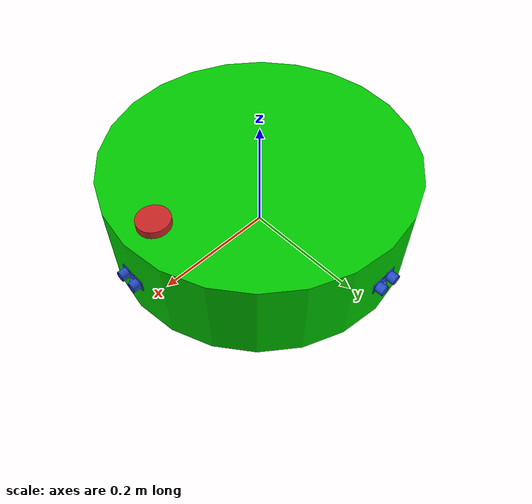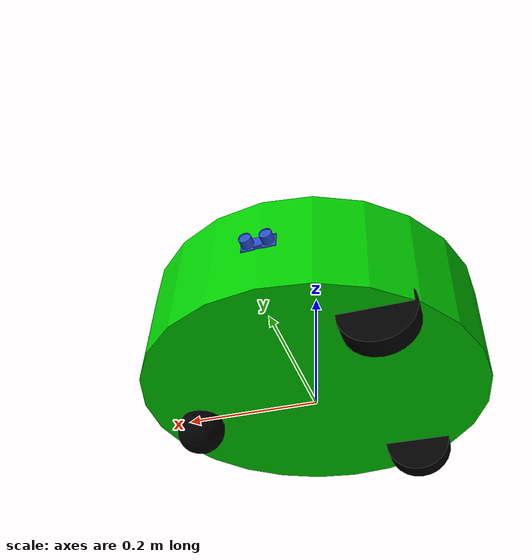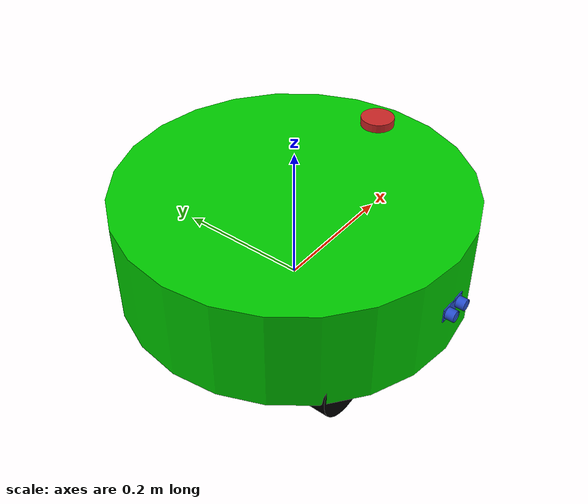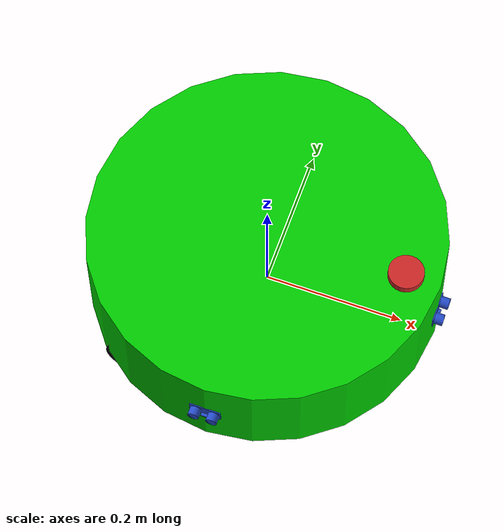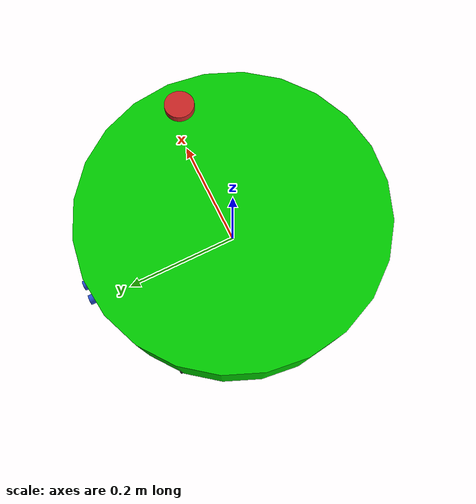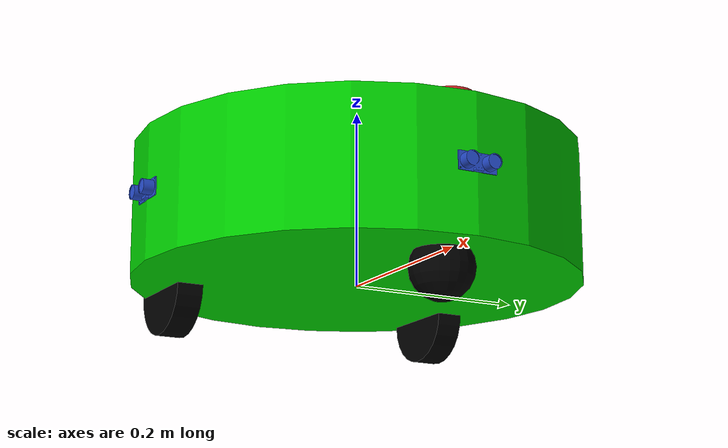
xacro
<?xml version="1.0"?>
<robot name="my_robot" xmlns:xacro="http://www.ros.org/wiki/xacro">
    <xacro:arg name="base_color_arg" default="Green"/>

    <xacro:include filename="$(find in424_desc)/xacro/materials.xacro"/>
    <xacro:include filename="$(find in424_desc)/xacro/robot.gazebo"/>
    <xacro:include filename="$(find in424_desc)/xacro/macro.xacro"/>

    <xacro:property name="base_radius" value="0.25"/>
    <xacro:property name="base_length" value="0.15"/>
    <xacro:property name="wheel_radius" value="0.05"/>
    <xacro:property name="wheel_length" value="0.03"/>
    <xacro:property name="front_wheel_radius" value="${wheel_radius/2+0.01}"/>

    <!-- *****************BASE LINK************************* -->
    <link name="base_footprint"/>

    <link name="base_link">
        <visual>
            <origin xyz="0 0 ${base_length/2}"/>
            <geometry>
                <cylinder radius="${base_radius}" length="${base_length}"/>
            </geometry>
            <material name="green"/>
        </visual>
        <collision>
            <origin xyz="0 0 ${base_length/2}"/>
            <geometry>
                <cylinder radius="${base_radius}" length="${base_length}"/>
            </geometry>
        </collision>
        <xacro:cylinder_inertial mass="0.5" radius="${base_radius}" length="${base_length}" oz="${base_length/2}" roll="0" pitch="0" yaw="0"/>
    </link>
    <joint name="base_footprint_to_base_link" type="fixed">
        <parent link="base_footprint"/>
        <child link="base_link"/>
    </joint>

    <link name="base_front">
        <visual>
            <geometry>
                <cylinder radius="0.025" length="0.025"/>
            </geometry>
        </visual>
    </link>
    <joint name="base_to_bf" type="fixed">
        <parent link="base_link"/>
        <child link="base_front"/>
        <origin xyz="${base_radius-2*0.025} 0 ${base_length}"/>
    </joint>

    <!-- *****************REAR WHEELS************************* -->
    <xacro:wheel prefix="left" reflect="1" />
    <xacro:wheel prefix="right" reflect="-1" />

    <!-- *****************FRONT WHEEL************************* -->
    <link name="front_wheel">
        <visual>
        <geometry>
            <sphere radius="${front_wheel_radius}"/>
        </geometry>
        <material name="black"/>
        </visual>
        <collision>
            <geometry>
                <sphere radius="${front_wheel_radius}"/>
            </geometry>
        </collision>
        <xacro:sphere_inertial mass="0.1" radius="${front_wheel_radius}"/>
    </link>
    <joint name="base_link_to_front_wheel" type="fixed">
        <parent link="base_link"/>
        <child link="front_wheel"/>
        <origin xyz="${base_radius-2*front_wheel_radius} 0 ${-front_wheel_radius/2}"/>
    </joint>

    <!-- *****************ULTRASONIC SENSORS************************* -->
    <xacro:us_link_joint link_name="us_front" x="${base_radius - 0.001}" y="0" yaw="0"/>
    <xacro:us_link_joint link_name="us_left" x="0" y="${base_radius - 0.001}" yaw="${pi/2}"/>
    <xacro:us_link_joint link_name="us_right" x="0" y="-${base_radius - 0.001}" yaw="-${pi/2}"/>
</robot>

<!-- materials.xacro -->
<robot>
    <material name="black">
        <color rgba="0.0 0.0 0.0 1.0"/>
    </material>

    <material name="blue">
        <color rgba="0.203125 0.23828125 0.28515625 1.0"/>
    </material>

    <material name="green">
        <color rgba="0.0 0.8 0.0 1.0"/>
    </material>

    <material name="grey">
        <color rgba="0.2 0.2 0.2 1.0"/>
    </material>

    <material name="orange">
        <color rgba="1.0 0.423529411765 0.0392156862745 1.0"/>
    </material>

    <material name="brown">
        <color rgba="0.870588235294 0.811764705882 0.764705882353 1.0"/>
    </material>

    <material name="red">
        <color rgba="0.80078125 0.12890625 0.1328125 1.0"/>
    </material>

    <material name="white">
        <color rgba="1.0 1.0 1.0 1.0"/>
    </material>
</robot>

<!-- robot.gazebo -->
<robot name="my_robot" xmlns:xacro="http://www.ros.org/wiki/xacro">
    <xacro:include filename="$(find in424_desc)/xacro/macro.xacro"/>

	<!-- base_link -->
	<gazebo reference="base_link">
		<material>Gazebo/$(arg base_color_arg)</material>
		<mu1>1.0</mu1>
		<mu2>1.0</mu2>
	</gazebo>
	<gazebo reference="base_front">
		<material>Gazebo/Red</material>
	</gazebo>

	<!-- Left Wheel -->
	<gazebo reference="left_wheel">
		<material>Gazebo/Black</material>
		<mu1>0.0</mu1>
    	<mu2>0.0</mu2>
	</gazebo>

	<!-- Right Wheel -->
	<gazebo reference="right_wheel">
		<material>Gazebo/Black</material>
		<mu1>0.0</mu1>
    	<mu2>0.0</mu2>
	</gazebo>

	<!-- Front Wheel -->
	<gazebo reference="front_wheel">
		<material>Gazebo/Black</material>
		<mu1>0.0</mu1>
    	<mu2>0.0</mu2>
	</gazebo>

	<!-- DO NOT TOUCH THIS PART -->
	<gazebo>
        <plugin name='object_controller' filename='libgazebo_ros_planar_move.so'>
            <odometry_frame>odom</odometry_frame>
			<update_rate>20</update_rate>	<!-- Set control loop update rate -->
            <publish_rate>10.0</publish_rate>	<!-- Set odom publish rate -->
            <robot_base_frame>base_footprint</robot_base_frame>
			<publish_odom_tf>false</publish_odom_tf>
        </plugin>
    </gazebo>

	<xacro:us_gazebo link_name="us_front"/>
	<xacro:us_gazebo link_name="us_left"/>
	<xacro:us_gazebo link_name="us_right"/>
</robot>

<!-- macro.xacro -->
<robot name="macro" xmlns:xacro="http://www.ros.org/wiki/xacro">
    <xacro:macro name="cylinder_inertial" params="mass radius length oz roll pitch yaw">
        <inertial>
        <origin xyz="0 0 ${oz}" rpy="${roll} ${pitch} ${yaw}"/>
        <mass value="${mass}"/>
        <inertia ixx="${mass*(3*radius*radius+length*length)/12}"
            iyy="${mass*(3*radius*radius+length*length)/12}"
            izz="${mass*radius*radius/2}"
            ixy="0" iyz="0" ixz="0"/>
        </inertial>
    </xacro:macro>

    <xacro:macro name="sphere_inertial" params="mass radius">
        <inertial>
        <mass value="${mass}"/>
        <inertia ixx="${mass*(2*radius*radius)/5}"
            iyy="${mass*(2*radius*radius)/5}"
            izz="${mass*(2*radius*radius)/5}"
            ixy="0" iyz="0" ixz="0"/>
        </inertial>
    </xacro:macro>

    <xacro:macro name="wheel" params="prefix reflect">
        <link name="${prefix}_wheel">
            <visual>
                <origin rpy="${pi/2} 0 0"/>
                <geometry>
                <cylinder radius="${wheel_radius}" length="${wheel_length}"/>
                </geometry>
                <material name="black"/>
            </visual>
            <collision>
                <origin rpy="${pi/2} 0 0"/>
                <geometry>
                <cylinder radius="${wheel_radius}" length="${wheel_length}"/>
                </geometry>
            </collision>
            <xacro:cylinder_inertial mass="0.05" radius="${wheel_radius}" length="${wheel_length}" oz="0" roll="${pi/2}" pitch="0" yaw="0"/>
        </link>
        <joint name="base_to_${prefix}_wheel" type="fixed">
            <parent link="base_link"/>
            <child link="${prefix}_wheel"/>
            <origin xyz="${-base_radius/2} ${reflect*(2*base_radius/3)} 0"/>
        </joint>
    </xacro:macro>

    <xacro:macro name="us_link_joint" params="link_name x y yaw">
        <link name="${link_name}">
            <visual>
                <origin xyz="0 0.0225 0.01" rpy="${-pi/2} 0 ${-pi/2}"/>
                <geometry>
                    <mesh filename="$(find in424_desc)/xacro/mesh/us_sensor.stl" scale="0.001 0.001 0.001"/>
                </geometry>
            </visual>
        </link>
        <joint name="base_to_${link_name}" type="fixed">
            <parent link="base_link"/>
            <child link="${link_name}"/>
            <origin xyz="${x} ${y} ${base_length/2}" rpy="0 0 ${yaw}"/>
        </joint>
    </xacro:macro>

    <xacro:macro name="us_gazebo" params="link_name">
        <gazebo reference="${link_name}">
            <material>Gazebo/Blue</material>
            <sensor type="ray" name="${link_name}">
                <pose>0 0 0 0 0 0</pose>
                <visualize>true</visualize>
                <update_rate>5</update_rate>
                <ray>
                    <scan>
                        <horizontal>
                            <samples>5</samples>
                            <resolution>1</resolution>
                            <min_angle>-0.14835</min_angle>
                            <max_angle>0.14835</max_angle>
                        </horizontal>
                        <vertical>
                            <samples>5</samples>
                            <resolution>1</resolution>
                            <min_angle>-0.01</min_angle>
                            <max_angle>0.14835</max_angle>
                        </vertical>
                    </scan>
                    <range>
                        <min>0.05</min>
                        <max>3</max>
                        <resolution>0.02</resolution>
                    </range>
                </ray>
                <plugin name="${link_name}" filename="libgazebo_ros_ray_sensor.so">
                    <ros>
                        <remapping>~/out:=~/range</remapping>
                    </ros>
                    <output_type>sensor_msgs/Range</output_type>
                    <radiation_type>ultrasound</radiation_type>
                    <frame_name>${link_name}</frame_name>
                </plugin>
            </sensor>
        </gazebo>
    </xacro:macro>
</robot>
